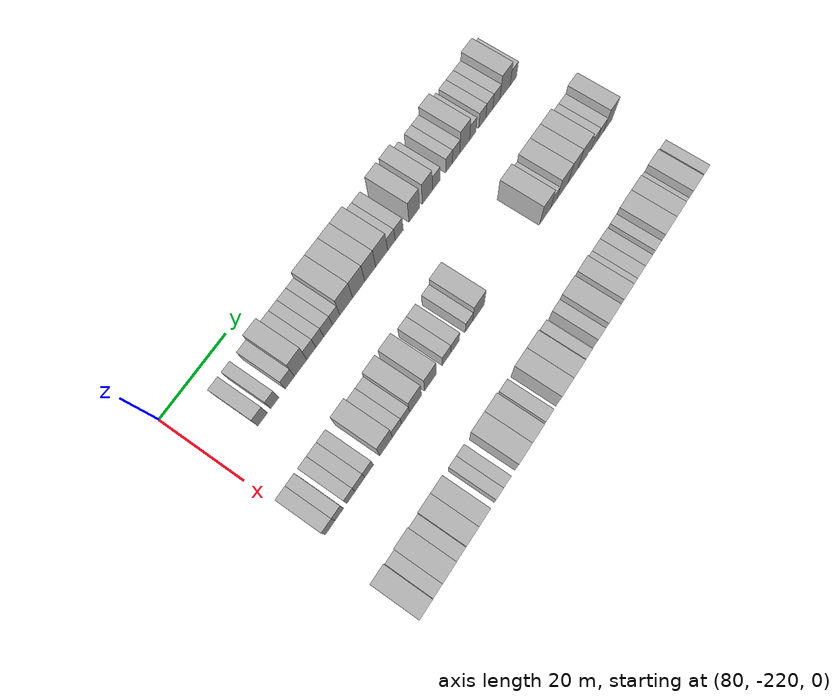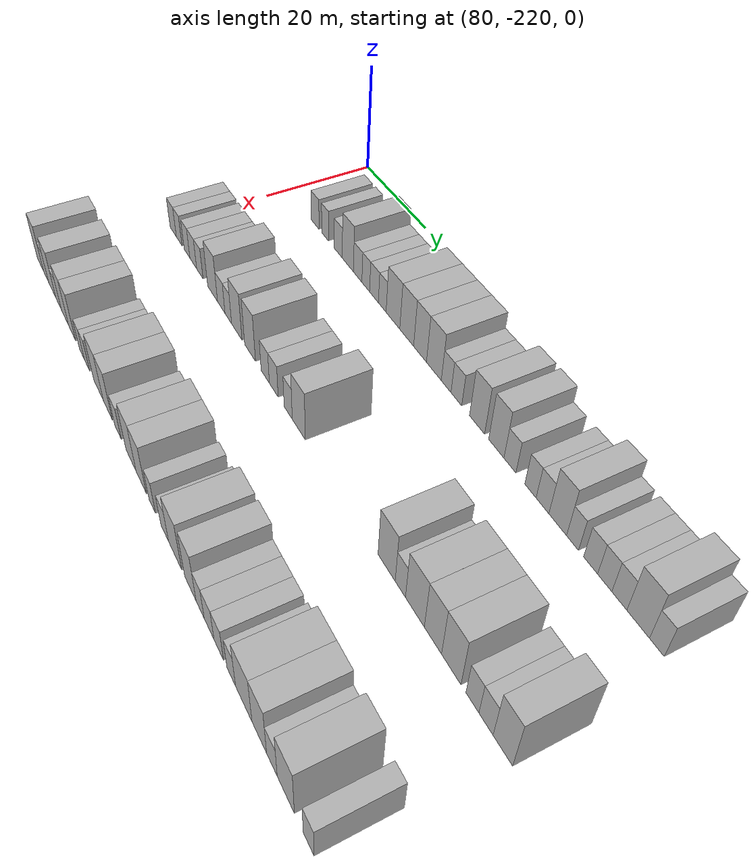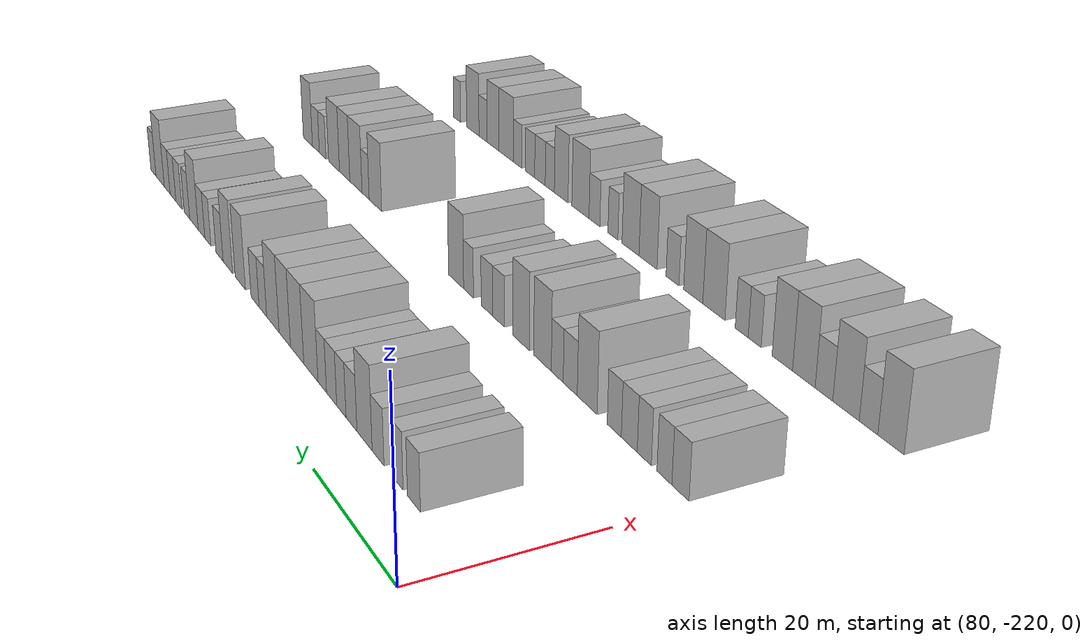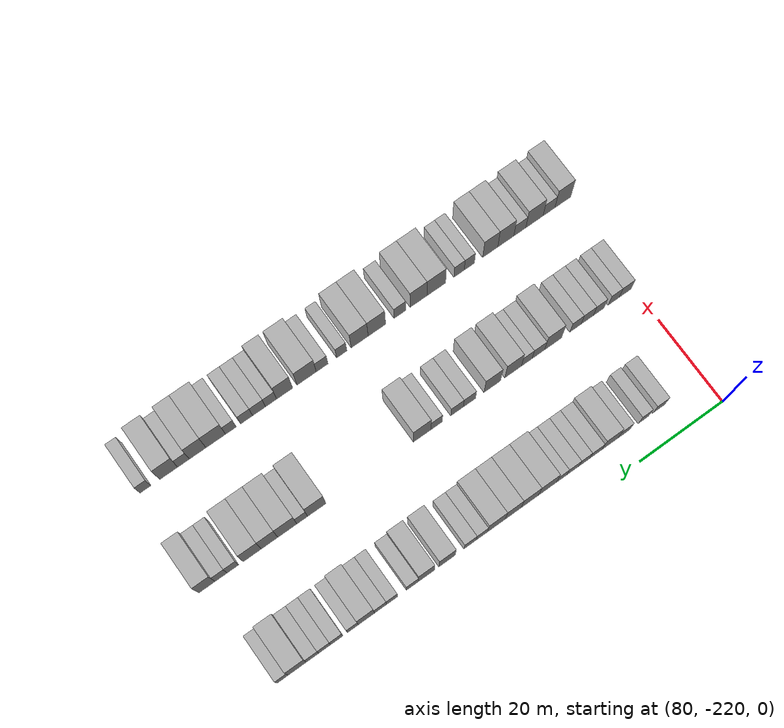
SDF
<sdf version="1.6">
 <world name="default">
  <model name="building_607">
   <static>1</static>
   <pose>91.0000 -209.2076 0 0.000000 0.000000 0.000000</pose>
   <link name="link">
    <pose>0 0 3.00 0 0 0</pose>
    <collision name="collision"><geometry><box><size>10.0000 2.9310 6.0000</size></box></geometry></collision>
    <visual name="visual">
     <cast_shadows>0</cast_shadows>
     <geometry><box><size>10.0000 2.9310 6.0000</size></box></geometry>
     <material>
      <script>
       <uri>model://HANNAS_wall/materials/scripts</uri>
       <uri>model://HANNAS_wall/materials/textures</uri>
       <name>vrc/HANNAS_wall</name>
      </script>
     </material>
    </visual>
   </link>
  </model>
  <model name="building_608">
   <static>1</static>
   <pose>91.0000 -205.4924 0 0.000000 0.000000 0.000000</pose>
   <link name="link">
    <pose>0 0 3.00 0 0 0</pose>
    <collision name="collision"><geometry><box><size>10.0000 2.4995 6.0000</size></box></geometry></collision>
    <visual name="visual">
     <cast_shadows>0</cast_shadows>
     <geometry><box><size>10.0000 2.4995 6.0000</size></box></geometry>
     <material>
      <script>
       <uri>model://HANNAS_wall/materials/scripts</uri>
       <uri>model://HANNAS_wall/materials/textures</uri>
       <name>vrc/HANNAS_wall</name>
      </script>
     </material>
    </visual>
   </link>
  </model>
  <model name="building_609">
   <static>1</static>
   <pose>91.0000 -200.7804 0 0.000000 0.000000 0.000000</pose>
   <link name="link">
    <pose>0 0 3.00 0 0 0</pose>
    <collision name="collision"><geometry><box><size>10.0000 2.9244 6.0000</size></box></geometry></collision>
    <visual name="visual">
     <cast_shadows>0</cast_shadows>
     <geometry><box><size>10.0000 2.9244 6.0000</size></box></geometry>
     <material>
      <script>
       <uri>model://HANNAS_wall/materials/scripts</uri>
       <uri>model://HANNAS_wall/materials/textures</uri>
       <name>vrc/HANNAS_wall</name>
      </script>
     </material>
    </visual>
   </link>
  </model>
  <model name="building_610">
   <static>1</static>
   <pose>91.0000 -197.3756 0 0.000000 0.000000 0.000000</pose>
   <link name="link">
    <pose>0 0 4.50 0 0 0</pose>
    <collision name="collision"><geometry><box><size>10.0000 3.8851 9.0000</size></box></geometry></collision>
    <visual name="visual">
     <cast_shadows>0</cast_shadows>
     <geometry><box><size>10.0000 3.8851 9.0000</size></box></geometry>
     <material>
      <script>
       <uri>model://HANNAS_wall/materials/scripts</uri>
       <uri>model://HANNAS_wall/materials/textures</uri>
       <name>vrc/HANNAS_wall</name>
      </script>
     </material>
    </visual>
   </link>
  </model>
  <model name="building_611">
   <static>1</static>
   <pose>91.0000 -193.9977 0 0.000000 0.000000 0.000000</pose>
   <link name="link">
    <pose>0 0 3.00 0 0 0</pose>
    <collision name="collision"><geometry><box><size>10.0000 2.8708 6.0000</size></box></geometry></collision>
    <visual name="visual">
     <cast_shadows>0</cast_shadows>
     <geometry><box><size>10.0000 2.8708 6.0000</size></box></geometry>
     <material>
      <script>
       <uri>model://HANNAS_wall/materials/scripts</uri>
       <uri>model://HANNAS_wall/materials/textures</uri>
       <name>vrc/HANNAS_wall</name>
      </script>
     </material>
    </visual>
   </link>
  </model>
  <model name="building_612">
   <static>1</static>
   <pose>91.0000 -191.2957 0 0.000000 0.000000 0.000000</pose>
   <link name="link">
    <pose>0 0 3.00 0 0 0</pose>
    <collision name="collision"><geometry><box><size>10.0000 2.5331 6.0000</size></box></geometry></collision>
    <visual name="visual">
     <cast_shadows>0</cast_shadows>
     <geometry><box><size>10.0000 2.5331 6.0000</size></box></geometry>
     <material>
      <script>
       <uri>model://HANNAS_wall/materials/scripts</uri>
       <uri>model://HANNAS_wall/materials/textures</uri>
       <name>vrc/HANNAS_wall</name>
      </script>
     </material>
    </visual>
   </link>
  </model>
  <model name="building_613">
   <static>1</static>
   <pose>91.0000 -188.6103 0 0.000000 0.000000 0.000000</pose>
   <link name="link">
    <pose>0 0 3.00 0 0 0</pose>
    <collision name="collision"><geometry><box><size>10.0000 2.8378 6.0000</size></box></geometry></collision>
    <visual name="visual">
     <cast_shadows>0</cast_shadows>
     <geometry><box><size>10.0000 2.8378 6.0000</size></box></geometry>
     <material>
      <script>
       <uri>model://HANNAS_wall/materials/scripts</uri>
       <uri>model://HANNAS_wall/materials/textures</uri>
       <name>vrc/HANNAS_wall</name>
      </script>
     </material>
    </visual>
   </link>
  </model>
  <model name="building_614">
   <static>1</static>
   <pose>91.0000 -185.9705 0 0.000000 0.000000 0.000000</pose>
   <link name="link">
    <pose>0 0 3.00 0 0 0</pose>
    <collision name="collision"><geometry><box><size>10.0000 2.4417 6.0000</size></box></geometry></collision>
    <visual name="visual">
     <cast_shadows>0</cast_shadows>
     <geometry><box><size>10.0000 2.4417 6.0000</size></box></geometry>
     <material>
      <script>
       <uri>model://HANNAS_wall/materials/scripts</uri>
       <uri>model://HANNAS_wall/materials/textures</uri>
       <name>vrc/HANNAS_wall</name>
      </script>
     </material>
    </visual>
   </link>
  </model>
  <model name="building_615">
   <static>1</static>
   <pose>91.0000 -182.6485 0 0.000000 0.000000 0.000000</pose>
   <link name="link">
    <pose>0 0 4.50 0 0 0</pose>
    <collision name="collision"><geometry><box><size>10.0000 4.2024 9.0000</size></box></geometry></collision>
    <visual name="visual">
     <cast_shadows>0</cast_shadows>
     <geometry><box><size>10.0000 4.2024 9.0000</size></box></geometry>
     <material>
      <script>
       <uri>model://HANNAS_wall/materials/scripts</uri>
       <uri>model://HANNAS_wall/materials/textures</uri>
       <name>vrc/HANNAS_wall</name>
      </script>
     </material>
    </visual>
   </link>
  </model>
  <model name="building_616">
   <static>1</static>
   <pose>91.0000 -178.4987 0 0.000000 0.000000 0.000000</pose>
   <link name="link">
    <pose>0 0 4.50 0 0 0</pose>
    <collision name="collision"><geometry><box><size>10.0000 4.0970 9.0000</size></box></geometry></collision>
    <visual name="visual">
     <cast_shadows>0</cast_shadows>
     <geometry><box><size>10.0000 4.0970 9.0000</size></box></geometry>
     <material>
      <script>
       <uri>model://HANNAS_wall/materials/scripts</uri>
       <uri>model://HANNAS_wall/materials/textures</uri>
       <name>vrc/HANNAS_wall</name>
      </script>
     </material>
    </visual>
   </link>
  </model>
  <model name="building_617">
   <static>1</static>
   <pose>91.0000 -174.6141 0 0.000000 0.000000 0.000000</pose>
   <link name="link">
    <pose>0 0 4.50 0 0 0</pose>
    <collision name="collision"><geometry><box><size>10.0000 3.6723 9.0000</size></box></geometry></collision>
    <visual name="visual">
     <cast_shadows>0</cast_shadows>
     <geometry><box><size>10.0000 3.6723 9.0000</size></box></geometry>
     <material>
      <script>
       <uri>model://HANNAS_wall/materials/scripts</uri>
       <uri>model://HANNAS_wall/materials/textures</uri>
       <name>vrc/HANNAS_wall</name>
      </script>
     </material>
    </visual>
   </link>
  </model>
  <model name="building_618">
   <static>1</static>
   <pose>91.0000 -170.7281 0 0.000000 0.000000 0.000000</pose>
   <link name="link">
    <pose>0 0 4.50 0 0 0</pose>
    <collision name="collision"><geometry><box><size>10.0000 4.0995 9.0000</size></box></geometry></collision>
    <visual name="visual">
     <cast_shadows>0</cast_shadows>
     <geometry><box><size>10.0000 4.0995 9.0000</size></box></geometry>
     <material>
      <script>
       <uri>model://HANNAS_wall/materials/scripts</uri>
       <uri>model://HANNAS_wall/materials/textures</uri>
       <name>vrc/HANNAS_wall</name>
      </script>
     </material>
    </visual>
   </link>
  </model>
  <model name="building_619">
   <static>1</static>
   <pose>91.0000 -167.3820 0 0.000000 0.000000 0.000000</pose>
   <link name="link">
    <pose>0 0 3.00 0 0 0</pose>
    <collision name="collision"><geometry><box><size>10.0000 2.5928 6.0000</size></box></geometry></collision>
    <visual name="visual">
     <cast_shadows>0</cast_shadows>
     <geometry><box><size>10.0000 2.5928 6.0000</size></box></geometry>
     <material>
      <script>
       <uri>model://HANNAS_wall/materials/scripts</uri>
       <uri>model://HANNAS_wall/materials/textures</uri>
       <name>vrc/HANNAS_wall</name>
      </script>
     </material>
    </visual>
   </link>
  </model>
  <model name="building_620">
   <static>1</static>
   <pose>91.0000 -164.6793 0 0.000000 0.000000 0.000000</pose>
   <link name="link">
    <pose>0 0 3.00 0 0 0</pose>
    <collision name="collision"><geometry><box><size>10.0000 2.8127 6.0000</size></box></geometry></collision>
    <visual name="visual">
     <cast_shadows>0</cast_shadows>
     <geometry><box><size>10.0000 2.8127 6.0000</size></box></geometry>
     <material>
      <script>
       <uri>model://HANNAS_wall/materials/scripts</uri>
       <uri>model://HANNAS_wall/materials/textures</uri>
       <name>vrc/HANNAS_wall</name>
      </script>
     </material>
    </visual>
   </link>
  </model>
  <model name="building_621">
   <static>1</static>
   <pose>91.0000 -159.3949 0 0.000000 0.000000 0.000000</pose>
   <link name="link">
    <pose>0 0 4.50 0 0 0</pose>
    <collision name="collision"><geometry><box><size>10.0000 3.7561 9.0000</size></box></geometry></collision>
    <visual name="visual">
     <cast_shadows>0</cast_shadows>
     <geometry><box><size>10.0000 3.7561 9.0000</size></box></geometry>
     <material>
      <script>
       <uri>model://HANNAS_wall/materials/scripts</uri>
       <uri>model://HANNAS_wall/materials/textures</uri>
       <name>vrc/HANNAS_wall</name>
      </script>
     </material>
    </visual>
   </link>
  </model>
  <model name="building_622">
   <static>1</static>
   <pose>91.0000 -154.7050 0 0.000000 0.000000 0.000000</pose>
   <link name="link">
    <pose>0 0 4.50 0 0 0</pose>
    <collision name="collision"><geometry><box><size>10.0000 3.6237 9.0000</size></box></geometry></collision>
    <visual name="visual">
     <cast_shadows>0</cast_shadows>
     <geometry><box><size>10.0000 3.6237 9.0000</size></box></geometry>
     <material>
      <script>
       <uri>model://HANNAS_wall/materials/scripts</uri>
       <uri>model://HANNAS_wall/materials/textures</uri>
       <name>vrc/HANNAS_wall</name>
      </script>
     </material>
    </visual>
   </link>
  </model>
  <model name="building_623">
   <static>1</static>
   <pose>91.0000 -151.5081 0 0.000000 0.000000 0.000000</pose>
   <link name="link">
    <pose>0 0 3.00 0 0 0</pose>
    <collision name="collision"><geometry><box><size>10.0000 2.7703 6.0000</size></box></geometry></collision>
    <visual name="visual">
     <cast_shadows>0</cast_shadows>
     <geometry><box><size>10.0000 2.7703 6.0000</size></box></geometry>
     <material>
      <script>
       <uri>model://HANNAS_wall/materials/scripts</uri>
       <uri>model://HANNAS_wall/materials/textures</uri>
       <name>vrc/HANNAS_wall</name>
      </script>
     </material>
    </visual>
   </link>
  </model>
  <model name="building_624">
   <static>1</static>
   <pose>91.0000 -146.8794 0 0.000000 0.000000 0.000000</pose>
   <link name="link">
    <pose>0 0 3.00 0 0 0</pose>
    <collision name="collision"><geometry><box><size>10.0000 2.4871 6.0000</size></box></geometry></collision>
    <visual name="visual">
     <cast_shadows>0</cast_shadows>
     <geometry><box><size>10.0000 2.4871 6.0000</size></box></geometry>
     <material>
      <script>
       <uri>model://HANNAS_wall/materials/scripts</uri>
       <uri>model://HANNAS_wall/materials/textures</uri>
       <name>vrc/HANNAS_wall</name>
      </script>
     </material>
    </visual>
   </link>
  </model>
  <model name="building_625">
   <static>1</static>
   <pose>91.0000 -144.2659 0 0.000000 0.000000 0.000000</pose>
   <link name="link">
    <pose>0 0 3.00 0 0 0</pose>
    <collision name="collision"><geometry><box><size>10.0000 2.7399 6.0000</size></box></geometry></collision>
    <visual name="visual">
     <cast_shadows>0</cast_shadows>
     <geometry><box><size>10.0000 2.7399 6.0000</size></box></geometry>
     <material>
      <script>
       <uri>model://HANNAS_wall/materials/scripts</uri>
       <uri>model://HANNAS_wall/materials/textures</uri>
       <name>vrc/HANNAS_wall</name>
      </script>
     </material>
    </visual>
   </link>
  </model>
  <model name="building_626">
   <static>1</static>
   <pose>91.0000 -141.0566 0 0.000000 0.000000 0.000000</pose>
   <link name="link">
    <pose>0 0 4.50 0 0 0</pose>
    <collision name="collision"><geometry><box><size>10.0000 3.6788 9.0000</size></box></geometry></collision>
    <visual name="visual">
     <cast_shadows>0</cast_shadows>
     <geometry><box><size>10.0000 3.6788 9.0000</size></box></geometry>
     <material>
      <script>
       <uri>model://HANNAS_wall/materials/scripts</uri>
       <uri>model://HANNAS_wall/materials/textures</uri>
       <name>vrc/HANNAS_wall</name>
      </script>
     </material>
    </visual>
   </link>
  </model>
  <model name="building_627">
   <static>1</static>
   <pose>91.0000 -138.0151 0 0.000000 0.000000 0.000000</pose>
   <link name="link">
    <pose>0 0 3.00 0 0 0</pose>
    <collision name="collision"><geometry><box><size>10.0000 2.4042 6.0000</size></box></geometry></collision>
    <visual name="visual">
     <cast_shadows>0</cast_shadows>
     <geometry><box><size>10.0000 2.4042 6.0000</size></box></geometry>
     <material>
      <script>
       <uri>model://HANNAS_wall/materials/scripts</uri>
       <uri>model://HANNAS_wall/materials/textures</uri>
       <name>vrc/HANNAS_wall</name>
      </script>
     </material>
    </visual>
   </link>
  </model>
  <model name="building_628">
   <static>1</static>
   <pose>91.0000 -134.4559 0 0.000000 0.000000 0.000000</pose>
   <link name="link">
    <pose>0 0 3.00 0 0 0</pose>
    <collision name="collision"><geometry><box><size>10.0000 2.7141 6.0000</size></box></geometry></collision>
    <visual name="visual">
     <cast_shadows>0</cast_shadows>
     <geometry><box><size>10.0000 2.7141 6.0000</size></box></geometry>
     <material>
      <script>
       <uri>model://HANNAS_wall/materials/scripts</uri>
       <uri>model://HANNAS_wall/materials/textures</uri>
       <name>vrc/HANNAS_wall</name>
      </script>
     </material>
    </visual>
   </link>
  </model>
  <model name="building_629">
   <static>1</static>
   <pose>91.0000 -131.7587 0 0.000000 0.000000 0.000000</pose>
   <link name="link">
    <pose>0 0 3.00 0 0 0</pose>
    <collision name="collision"><geometry><box><size>10.0000 2.6804 6.0000</size></box></geometry></collision>
    <visual name="visual">
     <cast_shadows>0</cast_shadows>
     <geometry><box><size>10.0000 2.6804 6.0000</size></box></geometry>
     <material>
      <script>
       <uri>model://HANNAS_wall/materials/scripts</uri>
       <uri>model://HANNAS_wall/materials/textures</uri>
       <name>vrc/HANNAS_wall</name>
      </script>
     </material>
    </visual>
   </link>
  </model>
  <model name="building_630">
   <static>1</static>
   <pose>91.0000 -129.0468 0 0.000000 0.000000 0.000000</pose>
   <link name="link">
    <pose>0 0 3.00 0 0 0</pose>
    <collision name="collision"><geometry><box><size>10.0000 2.7435 6.0000</size></box></geometry></collision>
    <visual name="visual">
     <cast_shadows>0</cast_shadows>
     <geometry><box><size>10.0000 2.7435 6.0000</size></box></geometry>
     <material>
      <script>
       <uri>model://HANNAS_wall/materials/scripts</uri>
       <uri>model://HANNAS_wall/materials/textures</uri>
       <name>vrc/HANNAS_wall</name>
      </script>
     </material>
    </visual>
   </link>
  </model>
  <model name="building_631">
   <static>1</static>
   <pose>91.0000 -125.6802 0 0.000000 0.000000 0.000000</pose>
   <link name="link">
    <pose>0 0 4.50 0 0 0</pose>
    <collision name="collision"><geometry><box><size>10.0000 3.9897 9.0000</size></box></geometry></collision>
    <visual name="visual">
     <cast_shadows>0</cast_shadows>
     <geometry><box><size>10.0000 3.9897 9.0000</size></box></geometry>
     <material>
      <script>
       <uri>model://HANNAS_wall/materials/scripts</uri>
       <uri>model://HANNAS_wall/materials/textures</uri>
       <name>vrc/HANNAS_wall</name>
      </script>
     </material>
    </visual>
   </link>
  </model>
  <model name="building_632">
   <static>1</static>
   <pose>91.0000 -122.4355 0 0.000000 0.000000 0.000000</pose>
   <link name="link">
    <pose>0 0 3.00 0 0 0</pose>
    <collision name="collision"><geometry><box><size>10.0000 2.4997 6.0000</size></box></geometry></collision>
    <visual name="visual">
     <cast_shadows>0</cast_shadows>
     <geometry><box><size>10.0000 2.4997 6.0000</size></box></geometry>
     <material>
      <script>
       <uri>model://HANNAS_wall/materials/scripts</uri>
       <uri>model://HANNAS_wall/materials/textures</uri>
       <name>vrc/HANNAS_wall</name>
      </script>
     </material>
    </visual>
   </link>
  </model>
  <model name="building_789">
   <static>1</static>
   <pose>113.0000 -217.9050 0 0.000000 0.000000 0.000000</pose>
   <link name="link">
    <pose>0 0 3.00 0 0 0</pose>
    <collision name="collision"><geometry><box><size>10.0000 2.9293 6.0000</size></box></geometry></collision>
    <visual name="visual">
     <cast_shadows>0</cast_shadows>
     <geometry><box><size>10.0000 2.9293 6.0000</size></box></geometry>
     <material>
      <script>
       <uri>model://HANNAS_wall/materials/scripts</uri>
       <uri>model://HANNAS_wall/materials/textures</uri>
       <name>vrc/HANNAS_wall</name>
      </script>
     </material>
    </visual>
   </link>
  </model>
  <model name="building_790">
   <static>1</static>
   <pose>113.0000 -215.1297 0 0.000000 0.000000 0.000000</pose>
   <link name="link">
    <pose>0 0 3.00 0 0 0</pose>
    <collision name="collision"><geometry><box><size>10.0000 2.6212 6.0000</size></box></geometry></collision>
    <visual name="visual">
     <cast_shadows>0</cast_shadows>
     <geometry><box><size>10.0000 2.6212 6.0000</size></box></geometry>
     <material>
      <script>
       <uri>model://HANNAS_wall/materials/scripts</uri>
       <uri>model://HANNAS_wall/materials/textures</uri>
       <name>vrc/HANNAS_wall</name>
      </script>
     </material>
    </visual>
   </link>
  </model>
  <model name="building_791">
   <static>1</static>
   <pose>113.0000 -211.5269 0 0.000000 0.000000 0.000000</pose>
   <link name="link">
    <pose>0 0 3.00 0 0 0</pose>
    <collision name="collision"><geometry><box><size>10.0000 2.5845 6.0000</size></box></geometry></collision>
    <visual name="visual">
     <cast_shadows>0</cast_shadows>
     <geometry><box><size>10.0000 2.5845 6.0000</size></box></geometry>
     <material>
      <script>
       <uri>model://HANNAS_wall/materials/scripts</uri>
       <uri>model://HANNAS_wall/materials/textures</uri>
       <name>vrc/HANNAS_wall</name>
      </script>
     </material>
    </visual>
   </link>
  </model>
  <model name="building_792">
   <static>1</static>
   <pose>113.0000 -208.7415 0 0.000000 0.000000 0.000000</pose>
   <link name="link">
    <pose>0 0 3.00 0 0 0</pose>
    <collision name="collision"><geometry><box><size>10.0000 2.9861 6.0000</size></box></geometry></collision>
    <visual name="visual">
     <cast_shadows>0</cast_shadows>
     <geometry><box><size>10.0000 2.9861 6.0000</size></box></geometry>
     <material>
      <script>
       <uri>model://HANNAS_wall/materials/scripts</uri>
       <uri>model://HANNAS_wall/materials/textures</uri>
       <name>vrc/HANNAS_wall</name>
      </script>
     </material>
    </visual>
   </link>
  </model>
  <model name="building_793">
   <static>1</static>
   <pose>113.0000 -205.8854 0 0.000000 0.000000 0.000000</pose>
   <link name="link">
    <pose>0 0 3.00 0 0 0</pose>
    <collision name="collision"><geometry><box><size>10.0000 2.7261 6.0000</size></box></geometry></collision>
    <visual name="visual">
     <cast_shadows>0</cast_shadows>
     <geometry><box><size>10.0000 2.7261 6.0000</size></box></geometry>
     <material>
      <script>
       <uri>model://HANNAS_wall/materials/scripts</uri>
       <uri>model://HANNAS_wall/materials/textures</uri>
       <name>vrc/HANNAS_wall</name>
      </script>
     </material>
    </visual>
   </link>
  </model>
  <model name="building_794">
   <static>1</static>
   <pose>113.0000 -200.4861 0 0.000000 0.000000 0.000000</pose>
   <link name="link">
    <pose>0 0 4.50 0 0 0</pose>
    <collision name="collision"><geometry><box><size>10.0000 4.0726 9.0000</size></box></geometry></collision>
    <visual name="visual">
     <cast_shadows>0</cast_shadows>
     <geometry><box><size>10.0000 4.0726 9.0000</size></box></geometry>
     <material>
      <script>
       <uri>model://HANNAS_wall/materials/scripts</uri>
       <uri>model://HANNAS_wall/materials/textures</uri>
       <name>vrc/HANNAS_wall</name>
      </script>
     </material>
    </visual>
   </link>
  </model>
  <model name="building_795">
   <static>1</static>
   <pose>113.0000 -196.9626 0 0.000000 0.000000 0.000000</pose>
   <link name="link">
    <pose>0 0 3.00 0 0 0</pose>
    <collision name="collision"><geometry><box><size>10.0000 2.9743 6.0000</size></box></geometry></collision>
    <visual name="visual">
     <cast_shadows>0</cast_shadows>
     <geometry><box><size>10.0000 2.9743 6.0000</size></box></geometry>
     <material>
      <script>
       <uri>model://HANNAS_wall/materials/scripts</uri>
       <uri>model://HANNAS_wall/materials/textures</uri>
       <name>vrc/HANNAS_wall</name>
      </script>
     </material>
    </visual>
   </link>
  </model>
  <model name="building_796">
   <static>1</static>
   <pose>113.0000 -194.1789 0 0.000000 0.000000 0.000000</pose>
   <link name="link">
    <pose>0 0 3.00 0 0 0</pose>
    <collision name="collision"><geometry><box><size>10.0000 2.5931 6.0000</size></box></geometry></collision>
    <visual name="visual">
     <cast_shadows>0</cast_shadows>
     <geometry><box><size>10.0000 2.5931 6.0000</size></box></geometry>
     <material>
      <script>
       <uri>model://HANNAS_wall/materials/scripts</uri>
       <uri>model://HANNAS_wall/materials/textures</uri>
       <name>vrc/HANNAS_wall</name>
      </script>
     </material>
    </visual>
   </link>
  </model>
  <model name="building_797">
   <static>1</static>
   <pose>113.0000 -190.9057 0 0.000000 0.000000 0.000000</pose>
   <link name="link">
    <pose>0 0 4.50 0 0 0</pose>
    <collision name="collision"><geometry><box><size>10.0000 3.9534 9.0000</size></box></geometry></collision>
    <visual name="visual">
     <cast_shadows>0</cast_shadows>
     <geometry><box><size>10.0000 3.9534 9.0000</size></box></geometry>
     <material>
      <script>
       <uri>model://HANNAS_wall/materials/scripts</uri>
       <uri>model://HANNAS_wall/materials/textures</uri>
       <name>vrc/HANNAS_wall</name>
      </script>
     </material>
    </visual>
   </link>
  </model>
  <model name="building_798">
   <static>1</static>
   <pose>113.0000 -185.9622 0 0.000000 0.000000 0.000000</pose>
   <link name="link">
    <pose>0 0 4.50 0 0 0</pose>
    <collision name="collision"><geometry><box><size>10.0000 3.9335 9.0000</size></box></geometry></collision>
    <visual name="visual">
     <cast_shadows>0</cast_shadows>
     <geometry><box><size>10.0000 3.9335 9.0000</size></box></geometry>
     <material>
      <script>
       <uri>model://HANNAS_wall/materials/scripts</uri>
       <uri>model://HANNAS_wall/materials/textures</uri>
       <name>vrc/HANNAS_wall</name>
      </script>
     </material>
    </visual>
   </link>
  </model>
  <model name="building_799">
   <static>1</static>
   <pose>113.0000 -180.5622 0 0.000000 0.000000 0.000000</pose>
   <link name="link">
    <pose>0 0 3.00 0 0 0</pose>
    <collision name="collision"><geometry><box><size>10.0000 2.8665 6.0000</size></box></geometry></collision>
    <visual name="visual">
     <cast_shadows>0</cast_shadows>
     <geometry><box><size>10.0000 2.8665 6.0000</size></box></geometry>
     <material>
      <script>
       <uri>model://HANNAS_wall/materials/scripts</uri>
       <uri>model://HANNAS_wall/materials/textures</uri>
       <name>vrc/HANNAS_wall</name>
      </script>
     </material>
    </visual>
   </link>
  </model>
  <model name="building_800">
   <static>1</static>
   <pose>113.0000 -177.6470 0 0.000000 0.000000 0.000000</pose>
   <link name="link">
    <pose>0 0 3.00 0 0 0</pose>
    <collision name="collision"><geometry><box><size>10.0000 2.9640 6.0000</size></box></geometry></collision>
    <visual name="visual">
     <cast_shadows>0</cast_shadows>
     <geometry><box><size>10.0000 2.9640 6.0000</size></box></geometry>
     <material>
      <script>
       <uri>model://HANNAS_wall/materials/scripts</uri>
       <uri>model://HANNAS_wall/materials/textures</uri>
       <name>vrc/HANNAS_wall</name>
      </script>
     </material>
    </visual>
   </link>
  </model>
  <model name="building_801">
   <static>1</static>
   <pose>113.0000 -172.8551 0 0.000000 0.000000 0.000000</pose>
   <link name="link">
    <pose>0 0 3.00 0 0 0</pose>
    <collision name="collision"><geometry><box><size>10.0000 2.6198 6.0000</size></box></geometry></collision>
    <visual name="visual">
     <cast_shadows>0</cast_shadows>
     <geometry><box><size>10.0000 2.6198 6.0000</size></box></geometry>
     <material>
      <script>
       <uri>model://HANNAS_wall/materials/scripts</uri>
       <uri>model://HANNAS_wall/materials/textures</uri>
       <name>vrc/HANNAS_wall</name>
      </script>
     </material>
    </visual>
   </link>
  </model>
  <model name="building_802">
   <static>1</static>
   <pose>113.0000 -169.4911 0 0.000000 0.000000 0.000000</pose>
   <link name="link">
    <pose>0 0 4.50 0 0 0</pose>
    <collision name="collision"><geometry><box><size>10.0000 4.1081 9.0000</size></box></geometry></collision>
    <visual name="visual">
     <cast_shadows>0</cast_shadows>
     <geometry><box><size>10.0000 4.1081 9.0000</size></box></geometry>
     <material>
      <script>
       <uri>model://HANNAS_wall/materials/scripts</uri>
       <uri>model://HANNAS_wall/materials/textures</uri>
       <name>vrc/HANNAS_wall</name>
      </script>
     </material>
    </visual>
   </link>
  </model>
  <model name="building_803">
   <static>1</static>
   <pose>113.0000 -145.1350 0 0.000000 0.000000 0.000000</pose>
   <link name="link">
    <pose>0 0 4.50 0 0 0</pose>
    <collision name="collision"><geometry><box><size>10.0000 4.2014 9.0000</size></box></geometry></collision>
    <visual name="visual">
     <cast_shadows>0</cast_shadows>
     <geometry><box><size>10.0000 4.2014 9.0000</size></box></geometry>
     <material>
      <script>
       <uri>model://HANNAS_wall/materials/scripts</uri>
       <uri>model://HANNAS_wall/materials/textures</uri>
       <name>vrc/HANNAS_wall</name>
      </script>
     </material>
    </visual>
   </link>
  </model>
  <model name="building_804">
   <static>1</static>
   <pose>113.0000 -141.8172 0 0.000000 0.000000 0.000000</pose>
   <link name="link">
    <pose>0 0 3.00 0 0 0</pose>
    <collision name="collision"><geometry><box><size>10.0000 2.4343 6.0000</size></box></geometry></collision>
    <visual name="visual">
     <cast_shadows>0</cast_shadows>
     <geometry><box><size>10.0000 2.4343 6.0000</size></box></geometry>
     <material>
      <script>
       <uri>model://HANNAS_wall/materials/scripts</uri>
       <uri>model://HANNAS_wall/materials/textures</uri>
       <name>vrc/HANNAS_wall</name>
      </script>
     </material>
    </visual>
   </link>
  </model>
  <model name="building_805">
   <static>1</static>
   <pose>113.0000 -138.4510 0 0.000000 0.000000 0.000000</pose>
   <link name="link">
    <pose>0 0 4.50 0 0 0</pose>
    <collision name="collision"><geometry><box><size>10.0000 4.2981 9.0000</size></box></geometry></collision>
    <visual name="visual">
     <cast_shadows>0</cast_shadows>
     <geometry><box><size>10.0000 4.2981 9.0000</size></box></geometry>
     <material>
      <script>
       <uri>model://HANNAS_wall/materials/scripts</uri>
       <uri>model://HANNAS_wall/materials/textures</uri>
       <name>vrc/HANNAS_wall</name>
      </script>
     </material>
    </visual>
   </link>
  </model>
  <model name="building_806">
   <static>1</static>
   <pose>113.0000 -134.4262 0 0.000000 0.000000 0.000000</pose>
   <link name="link">
    <pose>0 0 4.50 0 0 0</pose>
    <collision name="collision"><geometry><box><size>10.0000 3.7514 9.0000</size></box></geometry></collision>
    <visual name="visual">
     <cast_shadows>0</cast_shadows>
     <geometry><box><size>10.0000 3.7514 9.0000</size></box></geometry>
     <material>
      <script>
       <uri>model://HANNAS_wall/materials/scripts</uri>
       <uri>model://HANNAS_wall/materials/textures</uri>
       <name>vrc/HANNAS_wall</name>
      </script>
     </material>
    </visual>
   </link>
  </model>
  <model name="building_807">
   <static>1</static>
   <pose>113.0000 -130.5225 0 0.000000 0.000000 0.000000</pose>
   <link name="link">
    <pose>0 0 4.50 0 0 0</pose>
    <collision name="collision"><geometry><box><size>10.0000 4.0560 9.0000</size></box></geometry></collision>
    <visual name="visual">
     <cast_shadows>0</cast_shadows>
     <geometry><box><size>10.0000 4.0560 9.0000</size></box></geometry>
     <material>
      <script>
       <uri>model://HANNAS_wall/materials/scripts</uri>
       <uri>model://HANNAS_wall/materials/textures</uri>
       <name>vrc/HANNAS_wall</name>
      </script>
     </material>
    </visual>
   </link>
  </model>
  <model name="building_808">
   <static>1</static>
   <pose>113.0000 -126.2129 0 0.000000 0.000000 0.000000</pose>
   <link name="link">
    <pose>0 0 3.00 0 0 0</pose>
    <collision name="collision"><geometry><box><size>10.0000 2.5633 6.0000</size></box></geometry></collision>
    <visual name="visual">
     <cast_shadows>0</cast_shadows>
     <geometry><box><size>10.0000 2.5633 6.0000</size></box></geometry>
     <material>
      <script>
       <uri>model://HANNAS_wall/materials/scripts</uri>
       <uri>model://HANNAS_wall/materials/textures</uri>
       <name>vrc/HANNAS_wall</name>
      </script>
     </material>
    </visual>
   </link>
  </model>
  <model name="building_809">
   <static>1</static>
   <pose>113.0000 -123.5738 0 0.000000 0.000000 0.000000</pose>
   <link name="link">
    <pose>0 0 3.00 0 0 0</pose>
    <collision name="collision"><geometry><box><size>10.0000 2.7148 6.0000</size></box></geometry></collision>
    <visual name="visual">
     <cast_shadows>0</cast_shadows>
     <geometry><box><size>10.0000 2.7148 6.0000</size></box></geometry>
     <material>
      <script>
       <uri>model://HANNAS_wall/materials/scripts</uri>
       <uri>model://HANNAS_wall/materials/textures</uri>
       <name>vrc/HANNAS_wall</name>
      </script>
     </material>
    </visual>
   </link>
  </model>
  <model name="building_810">
   <static>1</static>
   <pose>113.0000 -120.4079 0 0.000000 0.000000 0.000000</pose>
   <link name="link">
    <pose>0 0 4.50 0 0 0</pose>
    <collision name="collision"><geometry><box><size>10.0000 3.6170 9.0000</size></box></geometry></collision>
    <visual name="visual">
     <cast_shadows>0</cast_shadows>
     <geometry><box><size>10.0000 3.6170 9.0000</size></box></geometry>
     <material>
      <script>
       <uri>model://HANNAS_wall/materials/scripts</uri>
       <uri>model://HANNAS_wall/materials/textures</uri>
       <name>vrc/HANNAS_wall</name>
      </script>
     </material>
    </visual>
   </link>
  </model>
  <model name="building_976">
   <static>1</static>
   <pose>135.0000 -219.3492 0 0.000000 0.000000 0.000000</pose>
   <link name="link">
    <pose>0 0 4.50 0 0 0</pose>
    <collision name="collision"><geometry><box><size>10.0000 3.9289 9.0000</size></box></geometry></collision>
    <visual name="visual">
     <cast_shadows>0</cast_shadows>
     <geometry><box><size>10.0000 3.9289 9.0000</size></box></geometry>
     <material>
      <script>
       <uri>model://HANNAS_wall/materials/scripts</uri>
       <uri>model://HANNAS_wall/materials/textures</uri>
       <name>vrc/HANNAS_wall</name>
      </script>
     </material>
    </visual>
   </link>
  </model>
  <model name="building_977">
   <static>1</static>
   <pose>135.0000 -215.9421 0 0.000000 0.000000 0.000000</pose>
   <link name="link">
    <pose>0 0 3.00 0 0 0</pose>
    <collision name="collision"><geometry><box><size>10.0000 2.8852 6.0000</size></box></geometry></collision>
    <visual name="visual">
     <cast_shadows>0</cast_shadows>
     <geometry><box><size>10.0000 2.8852 6.0000</size></box></geometry>
     <material>
      <script>
       <uri>model://HANNAS_wall/materials/scripts</uri>
       <uri>model://HANNAS_wall/materials/textures</uri>
       <name>vrc/HANNAS_wall</name>
      </script>
     </material>
    </visual>
   </link>
  </model>
  <model name="building_978">
   <static>1</static>
   <pose>135.0000 -212.3789 0 0.000000 0.000000 0.000000</pose>
   <link name="link">
    <pose>0 0 4.50 0 0 0</pose>
    <collision name="collision"><geometry><box><size>10.0000 4.2413 9.0000</size></box></geometry></collision>
    <visual name="visual">
     <cast_shadows>0</cast_shadows>
     <geometry><box><size>10.0000 4.2413 9.0000</size></box></geometry>
     <material>
      <script>
       <uri>model://HANNAS_wall/materials/scripts</uri>
       <uri>model://HANNAS_wall/materials/textures</uri>
       <name>vrc/HANNAS_wall</name>
      </script>
     </material>
    </visual>
   </link>
  </model>
  <model name="building_979">
   <static>1</static>
   <pose>135.0000 -208.7898 0 0.000000 0.000000 0.000000</pose>
   <link name="link">
    <pose>0 0 3.00 0 0 0</pose>
    <collision name="collision"><geometry><box><size>10.0000 2.9368 6.0000</size></box></geometry></collision>
    <visual name="visual">
     <cast_shadows>0</cast_shadows>
     <geometry><box><size>10.0000 2.9368 6.0000</size></box></geometry>
     <material>
      <script>
       <uri>model://HANNAS_wall/materials/scripts</uri>
       <uri>model://HANNAS_wall/materials/textures</uri>
       <name>vrc/HANNAS_wall</name>
      </script>
     </material>
    </visual>
   </link>
  </model>
  <model name="building_980">
   <static>1</static>
   <pose>135.0000 -205.3749 0 0.000000 0.000000 0.000000</pose>
   <link name="link">
    <pose>0 0 4.50 0 0 0</pose>
    <collision name="collision"><geometry><box><size>10.0000 3.8929 9.0000</size></box></geometry></collision>
    <visual name="visual">
     <cast_shadows>0</cast_shadows>
     <geometry><box><size>10.0000 3.8929 9.0000</size></box></geometry>
     <material>
      <script>
       <uri>model://HANNAS_wall/materials/scripts</uri>
       <uri>model://HANNAS_wall/materials/textures</uri>
       <name>vrc/HANNAS_wall</name>
      </script>
     </material>
    </visual>
   </link>
  </model>
  <model name="building_981">
   <static>1</static>
   <pose>135.0000 -201.6048 0 0.000000 0.000000 0.000000</pose>
   <link name="link">
    <pose>0 0 4.50 0 0 0</pose>
    <collision name="collision"><geometry><box><size>10.0000 3.6473 9.0000</size></box></geometry></collision>
    <visual name="visual">
     <cast_shadows>0</cast_shadows>
     <geometry><box><size>10.0000 3.6473 9.0000</size></box></geometry>
     <material>
      <script>
       <uri>model://HANNAS_wall/materials/scripts</uri>
       <uri>model://HANNAS_wall/materials/textures</uri>
       <name>vrc/HANNAS_wall</name>
      </script>
     </material>
    </visual>
   </link>
  </model>
  <model name="building_982">
   <static>1</static>
   <pose>135.0000 -196.5566 0 0.000000 0.000000 0.000000</pose>
   <link name="link">
    <pose>0 0 3.00 0 0 0</pose>
    <collision name="collision"><geometry><box><size>10.0000 2.4491 6.0000</size></box></geometry></collision>
    <visual name="visual">
     <cast_shadows>0</cast_shadows>
     <geometry><box><size>10.0000 2.4491 6.0000</size></box></geometry>
     <material>
      <script>
       <uri>model://HANNAS_wall/materials/scripts</uri>
       <uri>model://HANNAS_wall/materials/textures</uri>
       <name>vrc/HANNAS_wall</name>
      </script>
     </material>
    </visual>
   </link>
  </model>
  <model name="building_983">
   <static>1</static>
   <pose>135.0000 -194.0913 0 0.000000 0.000000 0.000000</pose>
   <link name="link">
    <pose>0 0 3.00 0 0 0</pose>
    <collision name="collision"><geometry><box><size>10.0000 2.4816 6.0000</size></box></geometry></collision>
    <visual name="visual">
     <cast_shadows>0</cast_shadows>
     <geometry><box><size>10.0000 2.4816 6.0000</size></box></geometry>
     <material>
      <script>
       <uri>model://HANNAS_wall/materials/scripts</uri>
       <uri>model://HANNAS_wall/materials/textures</uri>
       <name>vrc/HANNAS_wall</name>
      </script>
     </material>
    </visual>
   </link>
  </model>
  <model name="building_984">
   <static>1</static>
   <pose>135.0000 -188.6189 0 0.000000 0.000000 0.000000</pose>
   <link name="link">
    <pose>0 0 4.50 0 0 0</pose>
    <collision name="collision"><geometry><box><size>10.0000 4.4632 9.0000</size></box></geometry></collision>
    <visual name="visual">
     <cast_shadows>0</cast_shadows>
     <geometry><box><size>10.0000 4.4632 9.0000</size></box></geometry>
     <material>
      <script>
       <uri>model://HANNAS_wall/materials/scripts</uri>
       <uri>model://HANNAS_wall/materials/textures</uri>
       <name>vrc/HANNAS_wall</name>
      </script>
     </material>
    </visual>
   </link>
  </model>
  <model name="building_985">
   <static>1</static>
   <pose>135.0000 -184.3816 0 0.000000 0.000000 0.000000</pose>
   <link name="link">
    <pose>0 0 4.50 0 0 0</pose>
    <collision name="collision"><geometry><box><size>10.0000 4.0114 9.0000</size></box></geometry></collision>
    <visual name="visual">
     <cast_shadows>0</cast_shadows>
     <geometry><box><size>10.0000 4.0114 9.0000</size></box></geometry>
     <material>
      <script>
       <uri>model://HANNAS_wall/materials/scripts</uri>
       <uri>model://HANNAS_wall/materials/textures</uri>
       <name>vrc/HANNAS_wall</name>
      </script>
     </material>
    </visual>
   </link>
  </model>
  <model name="building_986">
   <static>1</static>
   <pose>135.0000 -179.9685 0 0.000000 0.000000 0.000000</pose>
   <link name="link">
    <pose>0 0 3.00 0 0 0</pose>
    <collision name="collision"><geometry><box><size>10.0000 2.8148 6.0000</size></box></geometry></collision>
    <visual name="visual">
     <cast_shadows>0</cast_shadows>
     <geometry><box><size>10.0000 2.8148 6.0000</size></box></geometry>
     <material>
      <script>
       <uri>model://HANNAS_wall/materials/scripts</uri>
       <uri>model://HANNAS_wall/materials/textures</uri>
       <name>vrc/HANNAS_wall</name>
      </script>
     </material>
    </visual>
   </link>
  </model>
  <model name="building_987">
   <static>1</static>
   <pose>135.0000 -174.5047 0 0.000000 0.000000 0.000000</pose>
   <link name="link">
    <pose>0 0 4.50 0 0 0</pose>
    <collision name="collision"><geometry><box><size>10.0000 4.1127 9.0000</size></box></geometry></collision>
    <visual name="visual">
     <cast_shadows>0</cast_shadows>
     <geometry><box><size>10.0000 4.1127 9.0000</size></box></geometry>
     <material>
      <script>
       <uri>model://HANNAS_wall/materials/scripts</uri>
       <uri>model://HANNAS_wall/materials/textures</uri>
       <name>vrc/HANNAS_wall</name>
      </script>
     </material>
    </visual>
   </link>
  </model>
  <model name="building_988">
   <static>1</static>
   <pose>135.0000 -170.4465 0 0.000000 0.000000 0.000000</pose>
   <link name="link">
    <pose>0 0 4.50 0 0 0</pose>
    <collision name="collision"><geometry><box><size>10.0000 4.0038 9.0000</size></box></geometry></collision>
    <visual name="visual">
     <cast_shadows>0</cast_shadows>
     <geometry><box><size>10.0000 4.0038 9.0000</size></box></geometry>
     <material>
      <script>
       <uri>model://HANNAS_wall/materials/scripts</uri>
       <uri>model://HANNAS_wall/materials/textures</uri>
       <name>vrc/HANNAS_wall</name>
      </script>
     </material>
    </visual>
   </link>
  </model>
  <model name="building_989">
   <static>1</static>
   <pose>135.0000 -166.2325 0 0.000000 0.000000 0.000000</pose>
   <link name="link">
    <pose>0 0 3.00 0 0 0</pose>
    <collision name="collision"><geometry><box><size>10.0000 2.4244 6.0000</size></box></geometry></collision>
    <visual name="visual">
     <cast_shadows>0</cast_shadows>
     <geometry><box><size>10.0000 2.4244 6.0000</size></box></geometry>
     <material>
      <script>
       <uri>model://HANNAS_wall/materials/scripts</uri>
       <uri>model://HANNAS_wall/materials/textures</uri>
       <name>vrc/HANNAS_wall</name>
      </script>
     </material>
    </visual>
   </link>
  </model>
  <model name="building_990">
   <static>1</static>
   <pose>135.0000 -161.6466 0 0.000000 0.000000 0.000000</pose>
   <link name="link">
    <pose>0 0 3.00 0 0 0</pose>
    <collision name="collision"><geometry><box><size>10.0000 2.7473 6.0000</size></box></geometry></collision>
    <visual name="visual">
     <cast_shadows>0</cast_shadows>
     <geometry><box><size>10.0000 2.7473 6.0000</size></box></geometry>
     <material>
      <script>
       <uri>model://HANNAS_wall/materials/scripts</uri>
       <uri>model://HANNAS_wall/materials/textures</uri>
       <name>vrc/HANNAS_wall</name>
      </script>
     </material>
    </visual>
   </link>
  </model>
  <model name="building_991">
   <static>1</static>
   <pose>135.0000 -158.0257 0 0.000000 0.000000 0.000000</pose>
   <link name="link">
    <pose>0 0 4.50 0 0 0</pose>
    <collision name="collision"><geometry><box><size>10.0000 4.4946 9.0000</size></box></geometry></collision>
    <visual name="visual">
     <cast_shadows>0</cast_shadows>
     <geometry><box><size>10.0000 4.4946 9.0000</size></box></geometry>
     <material>
      <script>
       <uri>model://HANNAS_wall/materials/scripts</uri>
       <uri>model://HANNAS_wall/materials/textures</uri>
       <name>vrc/HANNAS_wall</name>
      </script>
     </material>
    </visual>
   </link>
  </model>
  <model name="building_992">
   <static>1</static>
   <pose>135.0000 -152.9150 0 0.000000 0.000000 0.000000</pose>
   <link name="link">
    <pose>0 0 4.50 0 0 0</pose>
    <collision name="collision"><geometry><box><size>10.0000 3.7267 9.0000</size></box></geometry></collision>
    <visual name="visual">
     <cast_shadows>0</cast_shadows>
     <geometry><box><size>10.0000 3.7267 9.0000</size></box></geometry>
     <material>
      <script>
       <uri>model://HANNAS_wall/materials/scripts</uri>
       <uri>model://HANNAS_wall/materials/textures</uri>
       <name>vrc/HANNAS_wall</name>
      </script>
     </material>
    </visual>
   </link>
  </model>
  <model name="building_993">
   <static>1</static>
   <pose>135.0000 -149.7816 0 0.000000 0.000000 0.000000</pose>
   <link name="link">
    <pose>0 0 3.00 0 0 0</pose>
    <collision name="collision"><geometry><box><size>10.0000 2.5401 6.0000</size></box></geometry></collision>
    <visual name="visual">
     <cast_shadows>0</cast_shadows>
     <geometry><box><size>10.0000 2.5401 6.0000</size></box></geometry>
     <material>
      <script>
       <uri>model://HANNAS_wall/materials/scripts</uri>
       <uri>model://HANNAS_wall/materials/textures</uri>
       <name>vrc/HANNAS_wall</name>
      </script>
     </material>
    </visual>
   </link>
  </model>
  <model name="building_994">
   <static>1</static>
   <pose>135.0000 -147.0124 0 0.000000 0.000000 0.000000</pose>
   <link name="link">
    <pose>0 0 3.00 0 0 0</pose>
    <collision name="collision"><geometry><box><size>10.0000 2.9983 6.0000</size></box></geometry></collision>
    <visual name="visual">
     <cast_shadows>0</cast_shadows>
     <geometry><box><size>10.0000 2.9983 6.0000</size></box></geometry>
     <material>
      <script>
       <uri>model://HANNAS_wall/materials/scripts</uri>
       <uri>model://HANNAS_wall/materials/textures</uri>
       <name>vrc/HANNAS_wall</name>
      </script>
     </material>
    </visual>
   </link>
  </model>
  <model name="building_995">
   <static>1</static>
   <pose>135.0000 -144.1410 0 0.000000 0.000000 0.000000</pose>
   <link name="link">
    <pose>0 0 3.00 0 0 0</pose>
    <collision name="collision"><geometry><box><size>10.0000 2.7446 6.0000</size></box></geometry></collision>
    <visual name="visual">
     <cast_shadows>0</cast_shadows>
     <geometry><box><size>10.0000 2.7446 6.0000</size></box></geometry>
     <material>
      <script>
       <uri>model://HANNAS_wall/materials/scripts</uri>
       <uri>model://HANNAS_wall/materials/textures</uri>
       <name>vrc/HANNAS_wall</name>
      </script>
     </material>
    </visual>
   </link>
  </model>
  <model name="building_996">
   <static>1</static>
   <pose>135.0000 -140.5413 0 0.000000 0.000000 0.000000</pose>
   <link name="link">
    <pose>0 0 3.00 0 0 0</pose>
    <collision name="collision"><geometry><box><size>10.0000 2.4549 6.0000</size></box></geometry></collision>
    <visual name="visual">
     <cast_shadows>0</cast_shadows>
     <geometry><box><size>10.0000 2.4549 6.0000</size></box></geometry>
     <material>
      <script>
       <uri>model://HANNAS_wall/materials/scripts</uri>
       <uri>model://HANNAS_wall/materials/textures</uri>
       <name>vrc/HANNAS_wall</name>
      </script>
     </material>
    </visual>
   </link>
  </model>
  <model name="building_997">
   <static>1</static>
   <pose>135.0000 -137.0880 0 0.000000 0.000000 0.000000</pose>
   <link name="link">
    <pose>0 0 4.50 0 0 0</pose>
    <collision name="collision"><geometry><box><size>10.0000 4.4516 9.0000</size></box></geometry></collision>
    <visual name="visual">
     <cast_shadows>0</cast_shadows>
     <geometry><box><size>10.0000 4.4516 9.0000</size></box></geometry>
     <material>
      <script>
       <uri>model://HANNAS_wall/materials/scripts</uri>
       <uri>model://HANNAS_wall/materials/textures</uri>
       <name>vrc/HANNAS_wall</name>
      </script>
     </material>
    </visual>
   </link>
  </model>
  <model name="building_998">
   <static>1</static>
   <pose>135.0000 -132.9825 0 0.000000 0.000000 0.000000</pose>
   <link name="link">
    <pose>0 0 4.50 0 0 0</pose>
    <collision name="collision"><geometry><box><size>10.0000 3.7595 9.0000</size></box></geometry></collision>
    <visual name="visual">
     <cast_shadows>0</cast_shadows>
     <geometry><box><size>10.0000 3.7595 9.0000</size></box></geometry>
     <material>
      <script>
       <uri>model://HANNAS_wall/materials/scripts</uri>
       <uri>model://HANNAS_wall/materials/textures</uri>
       <name>vrc/HANNAS_wall</name>
      </script>
     </material>
    </visual>
   </link>
  </model>
  <model name="building_999">
   <static>1</static>
   <pose>135.0000 -129.7876 0 0.000000 0.000000 0.000000</pose>
   <link name="link">
    <pose>0 0 3.00 0 0 0</pose>
    <collision name="collision"><geometry><box><size>10.0000 2.6304 6.0000</size></box></geometry></collision>
    <visual name="visual">
     <cast_shadows>0</cast_shadows>
     <geometry><box><size>10.0000 2.6304 6.0000</size></box></geometry>
     <material>
      <script>
       <uri>model://HANNAS_wall/materials/scripts</uri>
       <uri>model://HANNAS_wall/materials/textures</uri>
       <name>vrc/HANNAS_wall</name>
      </script>
     </material>
    </visual>
   </link>
  </model>
  <model name="building_1000">
   <static>1</static>
   <pose>135.0000 -126.4344 0 0.000000 0.000000 0.000000</pose>
   <link name="link">
    <pose>0 0 4.50 0 0 0</pose>
    <collision name="collision"><geometry><box><size>10.0000 4.0758 9.0000</size></box></geometry></collision>
    <visual name="visual">
     <cast_shadows>0</cast_shadows>
     <geometry><box><size>10.0000 4.0758 9.0000</size></box></geometry>
     <material>
      <script>
       <uri>model://HANNAS_wall/materials/scripts</uri>
       <uri>model://HANNAS_wall/materials/textures</uri>
       <name>vrc/HANNAS_wall</name>
      </script>
     </material>
    </visual>
   </link>
  </model>
  <model name="building_1001">
   <static>1</static>
   <pose>135.0000 -121.1836 0 0.000000 0.000000 0.000000</pose>
   <link name="link">
    <pose>0 0 3.00 0 0 0</pose>
    <collision name="collision"><geometry><box><size>10.0000 2.4259 6.0000</size></box></geometry></collision>
    <visual name="visual">
     <cast_shadows>0</cast_shadows>
     <geometry><box><size>10.0000 2.4259 6.0000</size></box></geometry>
     <material>
      <script>
       <uri>model://HANNAS_wall/materials/scripts</uri>
       <uri>model://HANNAS_wall/materials/textures</uri>
       <name>vrc/HANNAS_wall</name>
      </script>
     </material>
    </visual>
   </link>
  </model>
 </world>
</sdf>
